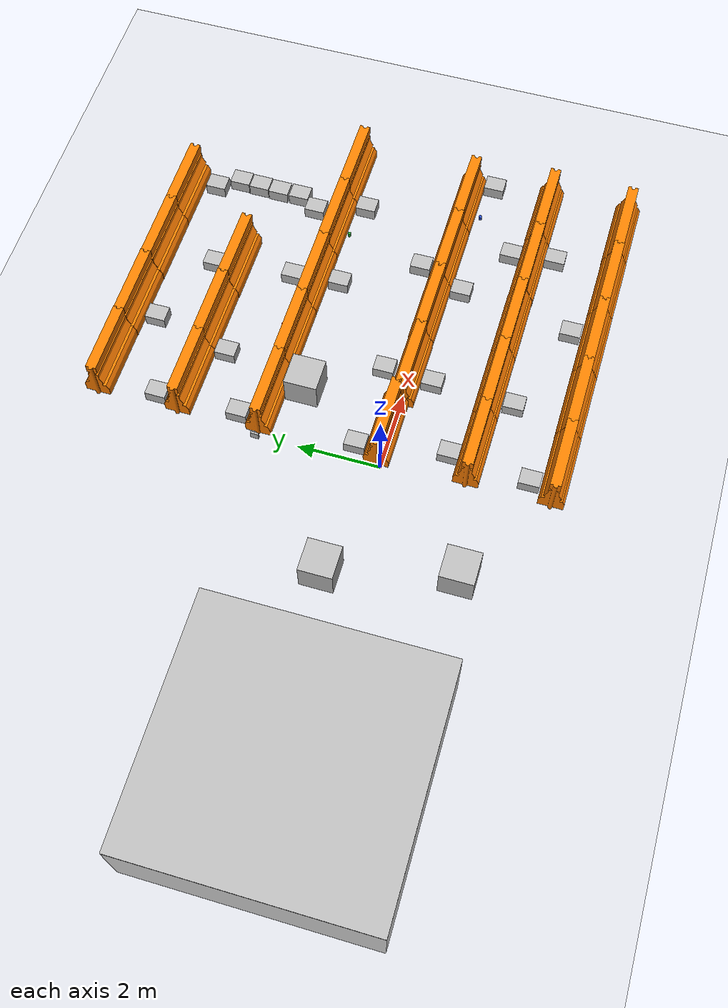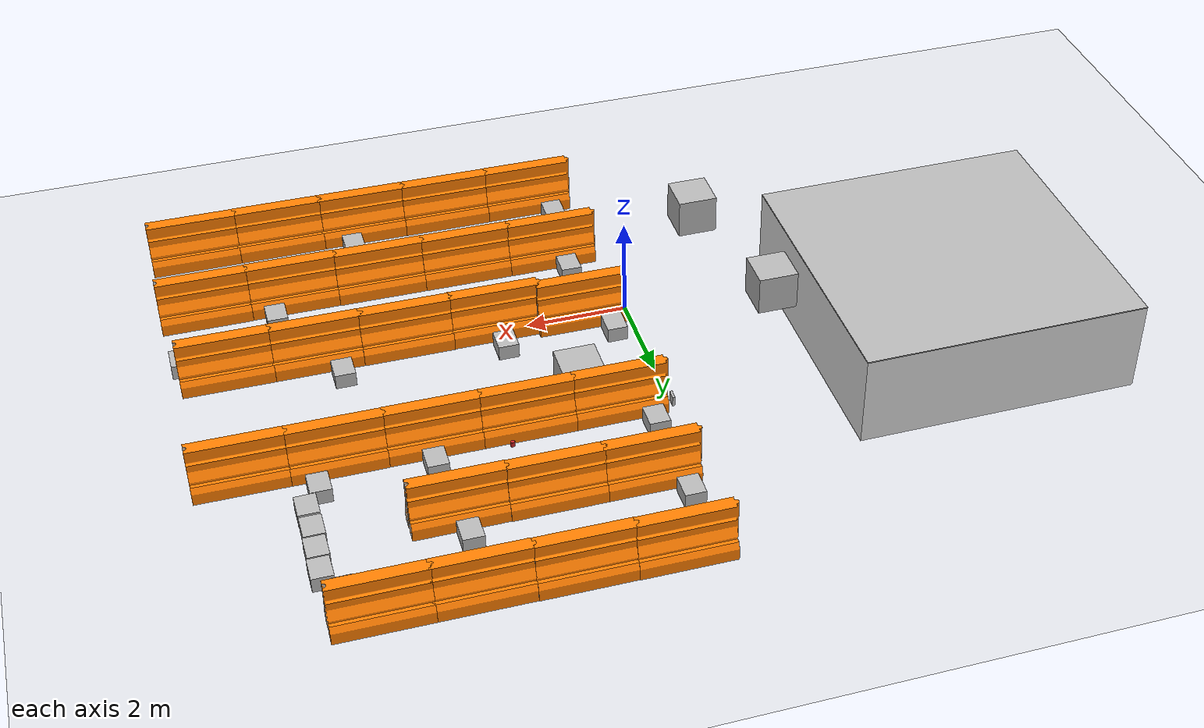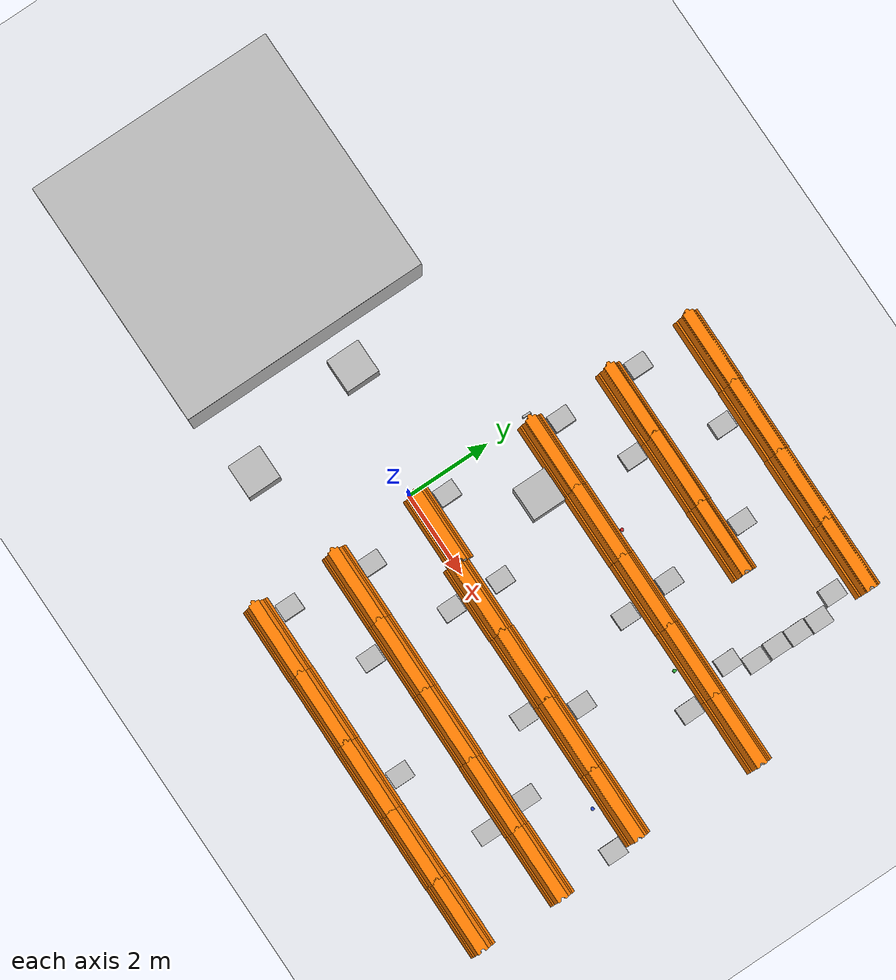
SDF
<sdf version="1.6">
 <world name="default">
  <light name="sun" type="directional">
   <pose>0 0 10 0 -0 0</pose>
   <diffuse>0.8 0.8 0.8 1</diffuse>
   <specular>0.2 0.2 0.2 1</specular>
   <attenuation>
    <range>1000</range>
    <constant>0.9</constant>
    <linear>0.01</linear>
    <quadratic>0.001</quadratic>
   </attenuation>
   <direction>-0.5 0.1 -0.9</direction>
  </light>
  <model name="ground_plane">
   <static>1</static>
   <link name="link">
    <collision name="collision">
     <geometry><plane><normal>0 0 1</normal><size>100 100</size></plane></geometry>
     <surface><friction><ode><mu>100</mu><mu2>50</mu2></ode></friction></surface>
    </collision>
    <visual name="visual">
     <cast_shadows>0</cast_shadows>
     <geometry><plane><normal>0 0 1</normal><size>100 100</size></plane></geometry>
     <material>
      <script><uri>file://media/materials/scripts/gazebo.material</uri><name>Gazebo/Grey</name></script>
     </material>
    </visual>
   </link>
  </model>
  <gravity>0 0 -9.8</gravity>
  <magnetic_field>6e-06 2.3e-05 -4.2e-05</magnetic_field>
  <atmosphere type="adiabatic"/>
  <physics name="default_physics" default="0" type="ode">
   <max_step_size>0.001</max_step_size>
   <real_time_factor>1</real_time_factor>
   <real_time_update_rate>1000</real_time_update_rate>
  </physics>
  <scene><ambient>0.4 0.4 0.4 1</ambient><background>0.7 0.7 0.7 1</background><shadows>1</shadows></scene>
  <audio><device>default</device></audio>
  <spherical_coordinates>
   <surface_model>EARTH_WGS84</surface_model>
   <latitude_deg>0</latitude_deg>
   <longitude_deg>0</longitude_deg>
   <elevation>0</elevation>
   <heading_deg>0</heading_deg>
  </spherical_coordinates>
  <model name="textured_shapes">
   <pose>-0.032494 3.03434 0.100002 1.5708 -2.5e-05 -1.60286</pose>
   <link name="box">
    <collision name="collision"><geometry><box><size>0.2 0.2 0.05</size></box></geometry></collision>
    <visual name="visual">
     <geometry><box><size>0.2 0.2 0.05</size></box></geometry>
     <material>
      <script>
       <uri>model://textured_shapes/materials/scripts</uri>
       <uri>model://textured_shapes/materials/textures</uri>
       <name>TexturedShape/Squares</name>
      </script>
     </material>
    </visual>
    <inertial>
     <inertia><ixx>1</ixx><ixy>0</ixy><ixz>0</ixz><iyy>1</iyy><iyz>0</iyz><izz>1</izz></inertia>
     <mass>1</mass>
    </inertial>
   </link>
  </model>
  <model name="BlueButton">
   <link name="link_0">
    <inertial>
     <mass>1</mass>
     <inertia><ixx>0.145833</ixx><ixy>0</ixy><ixz>0</ixz><iyy>0.145833</iyy><iyz>0</iyz><izz>0.125</izz></inertia>
    </inertial>
    <visual name="visual">
     <geometry><cylinder><radius>0.04</radius><length>0.1</length></cylinder></geometry>
     <material>
      <lighting>1</lighting>
      <script><uri>file://media/materials/scripts/gazebo.material</uri><name>Gazebo/Blue</name></script>
      <shader type="vertex"><normal_map>__default__</normal_map></shader>
      <ambient>0 0 1 1</ambient>
      <diffuse>0 0 1 1</diffuse>
      <specular>0.1 0.1 0.1 1</specular>
      <emissive>0 0 0 1</emissive>
     </material>
    </visual>
    <collision name="collision">
     <geometry><cylinder><radius>0.04</radius><length>0.1</length></cylinder></geometry>
     <surface>
      <friction>
       <ode><mu>1</mu><mu2>1</mu2><fdir1>0 0 0</fdir1><slip1>0</slip1><slip2>0</slip2></ode>
       <torsional>
        <coefficient>1</coefficient>
        <patch_radius>0</patch_radius>
        <surface_radius>0</surface_radius>
        <use_patch_radius>1</use_patch_radius>
        <ode><slip>0</slip></ode>
       </torsional>
      </friction>
      <bounce><restitution_coefficient>0</restitution_coefficient><threshold>1e+06</threshold></bounce>
      <contact>
       <collide_without_contact>0</collide_without_contact>
       <collide_without_contact_bitmask>1</collide_without_contact_bitmask>
       <collide_bitmask>1</collide_bitmask>
       <ode>
        <soft_cfm>0</soft_cfm>
        <soft_erp>0.2</soft_erp>
        <kp>1e+13</kp>
        <kd>1</kd>
        <max_vel>0.01</max_vel>
        <min_depth>0</min_depth>
       </ode>
       <bullet>
        <split_impulse>1</split_impulse>
        <split_impulse_penetration_threshold>-0.01</split_impulse_penetration_threshold>
        <soft_cfm>0</soft_cfm>
        <soft_erp>0.2</soft_erp>
        <kp>1e+13</kp>
        <kd>1</kd>
       </bullet>
      </contact>
     </surface>
    </collision>
   </link>
   <static>0</static>
   <pose>7.65973 -0.474781 0.049995 0 -0 4.2e-05</pose>
  </model>
  <model name="GreenButton">
   <link name="link_0">
    <inertial>
     <mass>1</mass>
     <inertia><ixx>0.145833</ixx><ixy>0</ixy><ixz>0</ixz><iyy>0.145833</iyy><iyz>0</iyz><izz>0.125</izz></inertia>
    </inertial>
    <visual name="visual">
     <geometry><cylinder><radius>0.04</radius><length>0.1</length></cylinder></geometry>
     <material>
      <lighting>1</lighting>
      <script><uri>file://media/materials/scripts/gazebo.material</uri><name>Gazebo/Green</name></script>
      <shader type="vertex"><normal_map>__default__</normal_map></shader>
      <ambient>0 1 0 1</ambient>
      <diffuse>0 1 0 1</diffuse>
      <specular>0.1 0.1 0.1 1</specular>
      <emissive>0 0 0 1</emissive>
     </material>
    </visual>
    <collision name="collision">
     <geometry><cylinder><radius>0.04</radius><length>0.1</length></cylinder></geometry>
     <surface>
      <friction>
       <ode><mu>1</mu><mu2>1</mu2><fdir1>0 0 0</fdir1><slip1>0</slip1><slip2>0</slip2></ode>
       <torsional>
        <coefficient>1</coefficient>
        <patch_radius>0</patch_radius>
        <surface_radius>0</surface_radius>
        <use_patch_radius>1</use_patch_radius>
        <ode><slip>0</slip></ode>
       </torsional>
      </friction>
      <bounce><restitution_coefficient>0</restitution_coefficient><threshold>1e+06</threshold></bounce>
      <contact>
       <collide_without_contact>0</collide_without_contact>
       <collide_without_contact_bitmask>1</collide_without_contact_bitmask>
       <collide_bitmask>1</collide_bitmask>
       <ode>
        <soft_cfm>0</soft_cfm>
        <soft_erp>0.2</soft_erp>
        <kp>1e+13</kp>
        <kd>1</kd>
        <max_vel>0.01</max_vel>
        <min_depth>0</min_depth>
       </ode>
       <bullet>
        <split_impulse>1</split_impulse>
        <split_impulse_penetration_threshold>-0.01</split_impulse_penetration_threshold>
        <soft_cfm>0</soft_cfm>
        <soft_erp>0.2</soft_erp>
        <kp>1e+13</kp>
        <kd>1</kd>
       </bullet>
      </contact>
     </surface>
    </collision>
   </link>
   <static>0</static>
   <pose>6.21612 2.594 0.049995 0 -0 3.9e-05</pose>
  </model>
  <model name="RedButton">
   <link name="link_1">
    <inertial>
     <mass>1</mass>
     <inertia><ixx>0.145833</ixx><ixy>0</ixy><ixz>0</ixz><iyy>0.145833</iyy><iyz>0</iyz><izz>0.125</izz></inertia>
    </inertial>
    <visual name="visual">
     <geometry><cylinder><radius>0.04</radius><length>0.1</length></cylinder></geometry>
     <material>
      <lighting>1</lighting>
      <script><uri>file://media/materials/scripts/gazebo.material</uri><name>Gazebo/Red</name></script>
      <shader type="vertex"><normal_map>__default__</normal_map></shader>
      <ambient>1 0 0 1</ambient>
      <diffuse>1 0 0 1</diffuse>
      <specular>0.1 0.1 0.1 1</specular>
      <emissive>0 0 0 1</emissive>
     </material>
    </visual>
    <collision name="collision">
     <geometry><cylinder><radius>0.04</radius><length>0.1</length></cylinder></geometry>
     <surface>
      <friction>
       <ode><mu>1</mu><mu2>1</mu2><fdir1>0 0 0</fdir1><slip1>0</slip1><slip2>0</slip2></ode>
       <torsional>
        <coefficient>1</coefficient>
        <patch_radius>0</patch_radius>
        <surface_radius>0</surface_radius>
        <use_patch_radius>1</use_patch_radius>
        <ode><slip>0</slip></ode>
       </torsional>
      </friction>
      <bounce><restitution_coefficient>0</restitution_coefficient><threshold>1e+06</threshold></bounce>
      <contact>
       <collide_without_contact>0</collide_without_contact>
       <collide_without_contact_bitmask>1</collide_without_contact_bitmask>
       <collide_bitmask>1</collide_bitmask>
       <ode>
        <soft_cfm>0</soft_cfm>
        <soft_erp>0.2</soft_erp>
        <kp>1e+13</kp>
        <kd>1</kd>
        <max_vel>0.01</max_vel>
        <min_depth>0</min_depth>
       </ode>
       <bullet>
        <split_impulse>1</split_impulse>
        <split_impulse_penetration_threshold>-0.01</split_impulse_penetration_threshold>
        <soft_cfm>0</soft_cfm>
        <soft_erp>0.2</soft_erp>
        <kp>1e+13</kp>
        <kd>1</kd>
       </bullet>
      </contact>
     </surface>
    </collision>
   </link>
   <static>0</static>
   <pose>3.1192 3.35271 0.049995 0 -0 5.8e-05</pose>
  </model>
  <model name="number2">
   <pose>1.54861 2.27585 0.4 0 -0 0</pose>
   <static>1</static>
   <link name="link">
    <visual name="visual">
     <geometry><mesh><uri>model://number1/meshes/number.dae</uri></mesh></geometry>
     <material>
      <script>
       <uri>model://number2/materials/scripts</uri>
       <uri>model://number2/materials/textures</uri>
       <name>Number/Two</name>
      </script>
     </material>
    </visual>
   </link>
  </model>
  <model name="number6">
   <pose>-2.89647 0.527536 0.4 0 -0 0</pose>
   <static>1</static>
   <link name="link">
    <visual name="visual">
     <geometry><mesh><uri>model://number1/meshes/number.dae</uri></mesh></geometry>
     <material>
      <script>
       <uri>model://number6/materials/scripts</uri>
       <uri>model://number6/materials/textures</uri>
       <name>Number/Six</name>
      </script>
     </material>
    </visual>
   </link>
  </model>
  <model name="number7">
   <pose>-2.19432 -2.44479 0.4 0 -0 0</pose>
   <static>1</static>
   <link name="link">
    <visual name="visual">
     <geometry><mesh><uri>model://number1/meshes/number.dae</uri></mesh></geometry>
     <material>
      <script>
       <uri>model://number7/materials/scripts</uri>
       <uri>model://number7/materials/textures</uri>
       <name>Number/Seven</name>
      </script>
     </material>
    </visual>
   </link>
  </model>
  <model name="box_target_green">
   <pose>-6.98276 0 -0.9999 0 0 -3.14</pose>
   <static>1</static>
   <link name="link">
    <collision name="collision"><geometry><box><size>6 6 2</size></box></geometry></collision>
    <visual name="visual">
     <geometry><mesh><uri>model://box_target_green/meshes/mesh.dae</uri></mesh></geometry>
    </visual>
   </link>
  </model>
  <model name="drc_practice_organge_jersey_barrier">
   <static>1</static>
   <link name="link">
    <visual name="visual">
     <geometry>
      <mesh><uri>model://drc_practice_orange_jersey_barrier/meshes/jersey_barrier.dae</uri></mesh>
     </geometry>
    </visual>
    <collision name="collision">
     <geometry>
      <mesh><uri>model://drc_practice_orange_jersey_barrier/meshes/jersey_barrier.dae</uri></mesh>
     </geometry>
    </collision>
   </link>
   <pose>0.94318 0.120005 0 0 0 -1.57386</pose>
  </model>
  <model name="drc_practice_organge_jersey_barrier_clone">
   <static>1</static>
   <link name="link">
    <visual name="visual">
     <geometry>
      <mesh><uri>model://drc_practice_orange_jersey_barrier/meshes/jersey_barrier.dae</uri></mesh>
     </geometry>
    </visual>
    <collision name="collision">
     <geometry>
      <mesh><uri>model://drc_practice_orange_jersey_barrier/meshes/jersey_barrier.dae</uri></mesh>
     </geometry>
    </collision>
   </link>
   <pose>2.64699 -0.005687 0 0 0 -1.57386</pose>
  </model>
  <model name="drc_practice_organge_jersey_barrier_clone_0">
   <static>1</static>
   <link name="link">
    <visual name="visual">
     <geometry>
      <mesh><uri>model://drc_practice_orange_jersey_barrier/meshes/jersey_barrier.dae</uri></mesh>
     </geometry>
    </visual>
    <collision name="collision">
     <geometry>
      <mesh><uri>model://drc_practice_orange_jersey_barrier/meshes/jersey_barrier.dae</uri></mesh>
     </geometry>
    </collision>
   </link>
   <pose>4.38633 -0.008737 0 0 0 -1.57386</pose>
  </model>
  <model name="drc_practice_organge_jersey_barrier_clone_1">
   <static>1</static>
   <link name="link">
    <visual name="visual">
     <geometry>
      <mesh><uri>model://drc_practice_orange_jersey_barrier/meshes/jersey_barrier.dae</uri></mesh>
     </geometry>
    </visual>
    <collision name="collision">
     <geometry>
      <mesh><uri>model://drc_practice_orange_jersey_barrier/meshes/jersey_barrier.dae</uri></mesh>
     </geometry>
    </collision>
   </link>
   <pose>6.10429 -0.025098 0 0 0 -1.57386</pose>
  </model>
  <model name="drc_practice_organge_jersey_barrier_clone_1_clone">
   <static>1</static>
   <link name="link">
    <visual name="visual">
     <geometry>
      <mesh><uri>model://drc_practice_orange_jersey_barrier/meshes/jersey_barrier.dae</uri></mesh>
     </geometry>
    </visual>
    <collision name="collision">
     <geometry>
      <mesh><uri>model://drc_practice_orange_jersey_barrier/meshes/jersey_barrier.dae</uri></mesh>
     </geometry>
    </collision>
   </link>
   <pose>7.84714 -0.036027 0 0 0 -1.57386</pose>
  </model>
  <model name="drc_practice_organge_jersey_barrier_clone_2">
   <static>1</static>
   <link name="link">
    <visual name="visual">
     <geometry>
      <mesh><uri>model://drc_practice_orange_jersey_barrier/meshes/jersey_barrier.dae</uri></mesh>
     </geometry>
    </visual>
    <collision name="collision">
     <geometry>
      <mesh><uri>model://drc_practice_orange_jersey_barrier/meshes/jersey_barrier.dae</uri></mesh>
     </geometry>
    </collision>
   </link>
   <pose>1 3 0 0 0 -1.57386</pose>
  </model>
  <model name="drc_practice_organge_jersey_barrier_clone_clone">
   <static>1</static>
   <link name="link">
    <visual name="visual">
     <geometry>
      <mesh><uri>model://drc_practice_orange_jersey_barrier/meshes/jersey_barrier.dae</uri></mesh>
     </geometry>
    </visual>
    <collision name="collision">
     <geometry>
      <mesh><uri>model://drc_practice_orange_jersey_barrier/meshes/jersey_barrier.dae</uri></mesh>
     </geometry>
    </collision>
   </link>
   <pose>2.75237 2.99063 0 0 0 -1.57386</pose>
  </model>
  <model name="drc_practice_organge_jersey_barrier_clone_clone_0">
   <static>1</static>
   <link name="link">
    <visual name="visual">
     <geometry>
      <mesh><uri>model://drc_practice_orange_jersey_barrier/meshes/jersey_barrier.dae</uri></mesh>
     </geometry>
    </visual>
    <collision name="collision">
     <geometry>
      <mesh><uri>model://drc_practice_orange_jersey_barrier/meshes/jersey_barrier.dae</uri></mesh>
     </geometry>
    </collision>
   </link>
   <pose>4.50023 2.97929 0 0 0 -1.57386</pose>
  </model>
  <model name="drc_practice_organge_jersey_barrier_clone_clone_1">
   <static>1</static>
   <link name="link">
    <visual name="visual">
     <geometry>
      <mesh><uri>model://drc_practice_orange_jersey_barrier/meshes/jersey_barrier.dae</uri></mesh>
     </geometry>
    </visual>
    <collision name="collision">
     <geometry>
      <mesh><uri>model://drc_practice_orange_jersey_barrier/meshes/jersey_barrier.dae</uri></mesh>
     </geometry>
    </collision>
   </link>
   <pose>6.25415 2.97251 0 0 0 -1.57386</pose>
  </model>
  <model name="drc_practice_organge_jersey_barrier_clone_clone_2">
   <static>1</static>
   <link name="link">
    <visual name="visual">
     <geometry>
      <mesh><uri>model://drc_practice_orange_jersey_barrier/meshes/jersey_barrier.dae</uri></mesh>
     </geometry>
    </visual>
    <collision name="collision">
     <geometry>
      <mesh><uri>model://drc_practice_orange_jersey_barrier/meshes/jersey_barrier.dae</uri></mesh>
     </geometry>
    </collision>
   </link>
   <pose>8.00433 2.95686 0 0 0 -1.57386</pose>
  </model>
  <model name="drc_practice_organge_jersey_barrier_clone_clone_3">
   <static>1</static>
   <link name="link">
    <visual name="visual">
     <geometry>
      <mesh><uri>model://drc_practice_orange_jersey_barrier/meshes/jersey_barrier.dae</uri></mesh>
     </geometry>
    </visual>
    <collision name="collision">
     <geometry>
      <mesh><uri>model://drc_practice_orange_jersey_barrier/meshes/jersey_barrier.dae</uri></mesh>
     </geometry>
    </collision>
   </link>
   <pose>1 5 0 0 0 -1.57386</pose>
  </model>
  <model name="drc_practice_organge_jersey_barrier_clone_clone_4">
   <static>1</static>
   <link name="link">
    <visual name="visual">
     <geometry>
      <mesh><uri>model://drc_practice_orange_jersey_barrier/meshes/jersey_barrier.dae</uri></mesh>
     </geometry>
    </visual>
    <collision name="collision">
     <geometry>
      <mesh><uri>model://drc_practice_orange_jersey_barrier/meshes/jersey_barrier.dae</uri></mesh>
     </geometry>
    </collision>
   </link>
   <pose>1 7 0 0 0 -1.57386</pose>
  </model>
  <model name="drc_practice_organge_jersey_barrier_clone_clone_5">
   <static>1</static>
   <link name="link">
    <visual name="visual">
     <geometry>
      <mesh><uri>model://drc_practice_orange_jersey_barrier/meshes/jersey_barrier.dae</uri></mesh>
     </geometry>
    </visual>
    <collision name="collision">
     <geometry>
      <mesh><uri>model://drc_practice_orange_jersey_barrier/meshes/jersey_barrier.dae</uri></mesh>
     </geometry>
    </collision>
   </link>
   <pose>2.72838 4.98864 0 0 0 -1.57386</pose>
  </model>
  <model name="drc_practice_organge_jersey_barrier_clone_clone_6">
   <static>1</static>
   <link name="link">
    <visual name="visual">
     <geometry>
      <mesh><uri>model://drc_practice_orange_jersey_barrier/meshes/jersey_barrier.dae</uri></mesh>
     </geometry>
    </visual>
    <collision name="collision">
     <geometry>
      <mesh><uri>model://drc_practice_orange_jersey_barrier/meshes/jersey_barrier.dae</uri></mesh>
     </geometry>
    </collision>
   </link>
   <pose>2.75356 6.97781 0 0 0 -1.57386</pose>
  </model>
  <model name="drc_practice_organge_jersey_barrier_clone_clone_7">
   <static>1</static>
   <link name="link">
    <visual name="visual">
     <geometry>
      <mesh><uri>model://drc_practice_orange_jersey_barrier/meshes/jersey_barrier.dae</uri></mesh>
     </geometry>
    </visual>
    <collision name="collision">
     <geometry>
      <mesh><uri>model://drc_practice_orange_jersey_barrier/meshes/jersey_barrier.dae</uri></mesh>
     </geometry>
    </collision>
   </link>
   <pose>4.48699 4.9658 0 0 0 -1.57386</pose>
  </model>
  <model name="drc_practice_organge_jersey_barrier_clone_clone_8">
   <static>1</static>
   <link name="link">
    <visual name="visual">
     <geometry>
      <mesh><uri>model://drc_practice_orange_jersey_barrier/meshes/jersey_barrier.dae</uri></mesh>
     </geometry>
    </visual>
    <collision name="collision">
     <geometry>
      <mesh><uri>model://drc_practice_orange_jersey_barrier/meshes/jersey_barrier.dae</uri></mesh>
     </geometry>
    </collision>
   </link>
   <pose>4.51216 6.95496 0 0 0 -1.57386</pose>
  </model>
  <model name="drc_practice_organge_jersey_barrier_clone_clone_9">
   <static>1</static>
   <link name="link">
    <visual name="visual">
     <geometry>
      <mesh><uri>model://drc_practice_orange_jersey_barrier/meshes/jersey_barrier.dae</uri></mesh>
     </geometry>
    </visual>
    <collision name="collision">
     <geometry>
      <mesh><uri>model://drc_practice_orange_jersey_barrier/meshes/jersey_barrier.dae</uri></mesh>
     </geometry>
    </collision>
   </link>
   <pose>6.23691 6.94236 0 0 0 -1.57386</pose>
  </model>
  <model name="drc_practice_organge_jersey_barrier_clone_3">
   <static>1</static>
   <link name="link">
    <visual name="visual">
     <geometry>
      <mesh><uri>model://drc_practice_orange_jersey_barrier/meshes/jersey_barrier.dae</uri></mesh>
     </geometry>
    </visual>
    <collision name="collision">
     <geometry>
      <mesh><uri>model://drc_practice_orange_jersey_barrier/meshes/jersey_barrier.dae</uri></mesh>
     </geometry>
    </collision>
   </link>
   <pose>1 -2 0 0 0 -1.57386</pose>
  </model>
  <model name="drc_practice_organge_jersey_barrier_clone_4">
   <static>1</static>
   <link name="link">
    <visual name="visual">
     <geometry>
      <mesh><uri>model://drc_practice_orange_jersey_barrier/meshes/jersey_barrier.dae</uri></mesh>
     </geometry>
    </visual>
    <collision name="collision">
     <geometry>
      <mesh><uri>model://drc_practice_orange_jersey_barrier/meshes/jersey_barrier.dae</uri></mesh>
     </geometry>
    </collision>
   </link>
   <pose>2.75745 -2.01392 0 0 0 -1.57386</pose>
  </model>
  <model name="drc_practice_organge_jersey_barrier_clone_5">
   <static>1</static>
   <link name="link">
    <visual name="visual">
     <geometry>
      <mesh><uri>model://drc_practice_orange_jersey_barrier/meshes/jersey_barrier.dae</uri></mesh>
     </geometry>
    </visual>
    <collision name="collision">
     <geometry>
      <mesh><uri>model://drc_practice_orange_jersey_barrier/meshes/jersey_barrier.dae</uri></mesh>
     </geometry>
    </collision>
   </link>
   <pose>4.50509 -2.02944 0 0 0 -1.57386</pose>
  </model>
  <model name="drc_practice_organge_jersey_barrier_clone_6">
   <static>1</static>
   <link name="link">
    <visual name="visual">
     <geometry>
      <mesh><uri>model://drc_practice_orange_jersey_barrier/meshes/jersey_barrier.dae</uri></mesh>
     </geometry>
    </visual>
    <collision name="collision">
     <geometry>
      <mesh><uri>model://drc_practice_orange_jersey_barrier/meshes/jersey_barrier.dae</uri></mesh>
     </geometry>
    </collision>
   </link>
   <pose>6.25384 -2.05043 0 0 0 -1.57386</pose>
  </model>
  <model name="drc_practice_organge_jersey_barrier_clone_7">
   <static>1</static>
   <link name="link">
    <visual name="visual">
     <geometry>
      <mesh><uri>model://drc_practice_orange_jersey_barrier/meshes/jersey_barrier.dae</uri></mesh>
     </geometry>
    </visual>
    <collision name="collision">
     <geometry>
      <mesh><uri>model://drc_practice_orange_jersey_barrier/meshes/jersey_barrier.dae</uri></mesh>
     </geometry>
    </collision>
   </link>
   <pose>7.99457 -2.05746 0 0 0 -1.57386</pose>
  </model>
  <model name="drc_practice_organge_jersey_barrier_clone_5_clone">
   <static>1</static>
   <link name="link">
    <visual name="visual">
     <geometry>
      <mesh><uri>model://drc_practice_orange_jersey_barrier/meshes/jersey_barrier.dae</uri></mesh>
     </geometry>
    </visual>
    <collision name="collision">
     <geometry>
      <mesh><uri>model://drc_practice_orange_jersey_barrier/meshes/jersey_barrier.dae</uri></mesh>
     </geometry>
    </collision>
   </link>
   <pose>1 -4 0 0 0 -1.57386</pose>
  </model>
  <model name="drc_practice_organge_jersey_barrier_clone_5_clone_0">
   <static>1</static>
   <link name="link">
    <visual name="visual">
     <geometry>
      <mesh><uri>model://drc_practice_orange_jersey_barrier/meshes/jersey_barrier.dae</uri></mesh>
     </geometry>
    </visual>
    <collision name="collision">
     <geometry>
      <mesh><uri>model://drc_practice_orange_jersey_barrier/meshes/jersey_barrier.dae</uri></mesh>
     </geometry>
    </collision>
   </link>
   <pose>2.75599 -4.00827 0 0 0 -1.57386</pose>
  </model>
  <model name="drc_practice_organge_jersey_barrier_clone_5_clone_1">
   <static>1</static>
   <link name="link">
    <visual name="visual">
     <geometry>
      <mesh><uri>model://drc_practice_orange_jersey_barrier/meshes/jersey_barrier.dae</uri></mesh>
     </geometry>
    </visual>
    <collision name="collision">
     <geometry>
      <mesh><uri>model://drc_practice_orange_jersey_barrier/meshes/jersey_barrier.dae</uri></mesh>
     </geometry>
    </collision>
   </link>
   <pose>4.49383 -4.02462 0 0 0 -1.57386</pose>
  </model>
  <model name="drc_practice_organge_jersey_barrier_clone_5_clone_2">
   <static>1</static>
   <link name="link">
    <visual name="visual">
     <geometry>
      <mesh><uri>model://drc_practice_orange_jersey_barrier/meshes/jersey_barrier.dae</uri></mesh>
     </geometry>
    </visual>
    <collision name="collision">
     <geometry>
      <mesh><uri>model://drc_practice_orange_jersey_barrier/meshes/jersey_barrier.dae</uri></mesh>
     </geometry>
    </collision>
   </link>
   <pose>6.2238 -4.03699 0 0 0 -1.57386</pose>
  </model>
  <model name="drc_practice_organge_jersey_barrier_clone_5_clone_3">
   <static>1</static>
   <link name="link">
    <visual name="visual">
     <geometry>
      <mesh><uri>model://drc_practice_orange_jersey_barrier/meshes/jersey_barrier.dae</uri></mesh>
     </geometry>
    </visual>
    <collision name="collision">
     <geometry>
      <mesh><uri>model://drc_practice_orange_jersey_barrier/meshes/jersey_barrier.dae</uri></mesh>
     </geometry>
    </collision>
   </link>
   <pose>7.95498 -4.04361 0 0 0 -1.57386</pose>
  </model>
  <model name="cardboard_box_clone_6_clone_1">
   <pose>8.64062 -0.61363 0.149 0 0 -1.57</pose>
   <link name="link">
    <inertial>
     <mass>2</mass>
     <inertia>
      <ixx>0.0416667</ixx>
      <ixy>0</ixy>
      <ixz>0</ixz>
      <iyy>0.0566667</iyy>
      <iyz>0</iyz>
      <izz>0.0683333</izz>
     </inertia>
    </inertial>
    <collision name="collision">
     <geometry><box><size>0.5 0.4 0.3</size></box></geometry>
     <surface>
      <friction><ode><mu>1</mu><mu2>1</mu2></ode></friction>
      <contact><ode><kp>1e+07</kp><kd>1</kd><min_depth>0.001</min_depth><max_vel>0.1</max_vel></ode></contact>
     </surface>
    </collision>
    <visual name="visual">
     <pose>0 0 -0.15 0 -0 0</pose>
     <geometry>
      <mesh><uri>model://cardboard_box/meshes/cardboard_box.dae</uri><scale>1.25932 1.00745 0.755591</scale></mesh>
     </geometry>
    </visual>
   </link>
  </model>
  <model name="cardboard_box_clone_6_clone_1_clone">
   <pose>0.414953 0.696176 0.149 0 0 -1.56712</pose>
   <link name="link">
    <inertial>
     <mass>2</mass>
     <inertia>
      <ixx>0.0416667</ixx>
      <ixy>0</ixy>
      <ixz>0</ixz>
      <iyy>0.0566667</iyy>
      <iyz>0</iyz>
      <izz>0.0683333</izz>
     </inertia>
    </inertial>
    <collision name="collision">
     <geometry><box><size>0.5 0.4 0.3</size></box></geometry>
     <surface>
      <friction><ode><mu>1</mu><mu2>1</mu2></ode></friction>
      <contact><ode><kp>1e+07</kp><kd>1</kd><min_depth>0.001</min_depth><max_vel>0.1</max_vel></ode></contact>
     </surface>
    </collision>
    <visual name="visual">
     <pose>0 0 -0.15 0 -0 0</pose>
     <geometry>
      <mesh><uri>model://cardboard_box/meshes/cardboard_box.dae</uri><scale>1.25932 1.00745 0.755591</scale></mesh>
     </geometry>
    </visual>
   </link>
  </model>
  <model name="cardboard_box_clone_6_clone_1_clone_0">
   <pose>2.56922 0.616772 0.149 0 0 -1.57</pose>
   <link name="link">
    <inertial>
     <mass>2</mass>
     <inertia>
      <ixx>0.0416667</ixx>
      <ixy>0</ixy>
      <ixz>0</ixz>
      <iyy>0.0566667</iyy>
      <iyz>0</iyz>
      <izz>0.0683333</izz>
     </inertia>
    </inertial>
    <collision name="collision">
     <geometry><box><size>0.5 0.4 0.3</size></box></geometry>
     <surface>
      <friction><ode><mu>1</mu><mu2>1</mu2></ode></friction>
      <contact><ode><kp>1e+07</kp><kd>1</kd><min_depth>0.001</min_depth><max_vel>0.1</max_vel></ode></contact>
     </surface>
    </collision>
    <visual name="visual">
     <pose>0 0 -0.15 0 -0 0</pose>
     <geometry>
      <mesh><uri>model://cardboard_box/meshes/cardboard_box.dae</uri><scale>1.25932 1.00745 0.755591</scale></mesh>
     </geometry>
    </visual>
   </link>
  </model>
  <model name="cardboard_box_clone_6_clone_1_clone_1">
   <pose>4.68905 2.3788 0.149 0 0 -1.57</pose>
   <link name="link">
    <inertial>
     <mass>2</mass>
     <inertia>
      <ixx>0.0416667</ixx>
      <ixy>0</ixy>
      <ixz>0</ixz>
      <iyy>0.0566667</iyy>
      <iyz>0</iyz>
      <izz>0.0683333</izz>
     </inertia>
    </inertial>
    <collision name="collision">
     <geometry><box><size>0.5 0.4 0.3</size></box></geometry>
     <surface>
      <friction><ode><mu>1</mu><mu2>1</mu2></ode></friction>
      <contact><ode><kp>1e+07</kp><kd>1</kd><min_depth>0.001</min_depth><max_vel>0.1</max_vel></ode></contact>
     </surface>
    </collision>
    <visual name="visual">
     <pose>0 0 -0.15 0 -0 0</pose>
     <geometry>
      <mesh><uri>model://cardboard_box/meshes/cardboard_box.dae</uri><scale>1.25932 1.00745 0.755591</scale></mesh>
     </geometry>
    </visual>
   </link>
  </model>
  <model name="cardboard_box_clone_6_clone_1_clone_2">
   <pose>5.72238 0.559862 0.149 0 0 -1.57</pose>
   <link name="link">
    <inertial>
     <mass>2</mass>
     <inertia>
      <ixx>0.0416667</ixx>
      <ixy>0</ixy>
      <ixz>0</ixz>
      <iyy>0.0566667</iyy>
      <iyz>0</iyz>
      <izz>0.0683333</izz>
     </inertia>
    </inertial>
    <collision name="collision">
     <geometry><box><size>0.5 0.4 0.3</size></box></geometry>
     <surface>
      <friction><ode><mu>1</mu><mu2>1</mu2></ode></friction>
      <contact><ode><kp>1e+07</kp><kd>1</kd><min_depth>0.001</min_depth><max_vel>0.1</max_vel></ode></contact>
     </surface>
    </collision>
    <visual name="visual">
     <pose>0 0 -0.15 0 -0 0</pose>
     <geometry>
      <mesh><uri>model://cardboard_box/meshes/cardboard_box.dae</uri><scale>1.25932 1.00745 0.755591</scale></mesh>
     </geometry>
    </visual>
   </link>
  </model>
  <model name="cardboard_box_clone_6_clone_1_clone_3">
   <pose>7.09548 2.37647 0.149 0 0 -1.57</pose>
   <link name="link">
    <inertial>
     <mass>2</mass>
     <inertia>
      <ixx>0.0416667</ixx>
      <ixy>0</ixy>
      <ixz>0</ixz>
      <iyy>0.0566667</iyy>
      <iyz>0</iyz>
      <izz>0.0683333</izz>
     </inertia>
    </inertial>
    <collision name="collision">
     <geometry><box><size>0.5 0.4 0.3</size></box></geometry>
     <surface>
      <friction><ode><mu>1</mu><mu2>1</mu2></ode></friction>
      <contact><ode><kp>1e+07</kp><kd>1</kd><min_depth>0.001</min_depth><max_vel>0.1</max_vel></ode></contact>
     </surface>
    </collision>
    <visual name="visual">
     <pose>0 0 -0.15 0 -0 0</pose>
     <geometry>
      <mesh><uri>model://cardboard_box/meshes/cardboard_box.dae</uri><scale>1.25932 1.00745 0.755591</scale></mesh>
     </geometry>
    </visual>
   </link>
  </model>
  <model name="cardboard_box_clone_6_clone_1_clone_4">
   <pose>0.754896 -1.44853 0.149 -0 -0 -1.57848</pose>
   <link name="link">
    <inertial>
     <mass>2</mass>
     <inertia>
      <ixx>0.0416667</ixx>
      <ixy>0</ixy>
      <ixz>0</ixz>
      <iyy>0.0566667</iyy>
      <iyz>0</iyz>
      <izz>0.0683333</izz>
     </inertia>
    </inertial>
    <collision name="collision">
     <geometry><box><size>0.5 0.4 0.3</size></box></geometry>
     <surface>
      <friction><ode><mu>1</mu><mu2>1</mu2></ode></friction>
      <contact><ode><kp>1e+07</kp><kd>1</kd><min_depth>0.001</min_depth><max_vel>0.1</max_vel></ode></contact>
     </surface>
    </collision>
    <visual name="visual">
     <pose>0 0 -0.15 0 -0 0</pose>
     <geometry>
      <mesh><uri>model://cardboard_box/meshes/cardboard_box.dae</uri><scale>1.25932 1.00745 0.755591</scale></mesh>
     </geometry>
    </visual>
   </link>
  </model>
  <model name="cardboard_box_clone_6_clone_1_clone_5">
   <pose>2.50363 -0.591095 0.149 0 0 -1.57</pose>
   <link name="link">
    <inertial>
     <mass>2</mass>
     <inertia>
      <ixx>0.0416667</ixx>
      <ixy>0</ixy>
      <ixz>0</ixz>
      <iyy>0.0566667</iyy>
      <iyz>0</iyz>
      <izz>0.0683333</izz>
     </inertia>
    </inertial>
    <collision name="collision">
     <geometry><box><size>0.5 0.4 0.3</size></box></geometry>
     <surface>
      <friction><ode><mu>1</mu><mu2>1</mu2></ode></friction>
      <contact><ode><kp>1e+07</kp><kd>1</kd><min_depth>0.001</min_depth><max_vel>0.1</max_vel></ode></contact>
     </surface>
    </collision>
    <visual name="visual">
     <pose>0 0 -0.15 0 -0 0</pose>
     <geometry>
      <mesh><uri>model://cardboard_box/meshes/cardboard_box.dae</uri><scale>1.25932 1.00745 0.755591</scale></mesh>
     </geometry>
    </visual>
   </link>
  </model>
  <model name="cardboard_box_clone_6_clone_1_clone_6">
   <pose>5.24939 -0.591102 0.149 0 0 -1.57</pose>
   <link name="link">
    <inertial>
     <mass>2</mass>
     <inertia>
      <ixx>0.0416667</ixx>
      <ixy>0</ixy>
      <ixz>0</ixz>
      <iyy>0.0566667</iyy>
      <iyz>0</iyz>
      <izz>0.0683333</izz>
     </inertia>
    </inertial>
    <collision name="collision">
     <geometry><box><size>0.5 0.4 0.3</size></box></geometry>
     <surface>
      <friction><ode><mu>1</mu><mu2>1</mu2></ode></friction>
      <contact><ode><kp>1e+07</kp><kd>1</kd><min_depth>0.001</min_depth><max_vel>0.1</max_vel></ode></contact>
     </surface>
    </collision>
    <visual name="visual">
     <pose>0 0 -0.15 0 -0 0</pose>
     <geometry>
      <mesh><uri>model://cardboard_box/meshes/cardboard_box.dae</uri><scale>1.25932 1.00745 0.755591</scale></mesh>
     </geometry>
    </visual>
   </link>
  </model>
  <model name="cardboard_box_clone_6_clone_1_clone_7">
   <pose>6.68328 -1.50425 0.149 0 0 -1.57829</pose>
   <link name="link">
    <inertial>
     <mass>2</mass>
     <inertia>
      <ixx>0.0416667</ixx>
      <ixy>0</ixy>
      <ixz>0</ixz>
      <iyy>0.0566667</iyy>
      <iyz>0</iyz>
      <izz>0.0683333</izz>
     </inertia>
    </inertial>
    <collision name="collision">
     <geometry><box><size>0.5 0.4 0.3</size></box></geometry>
     <surface>
      <friction><ode><mu>1</mu><mu2>1</mu2></ode></friction>
      <contact><ode><kp>1e+07</kp><kd>1</kd><min_depth>0.001</min_depth><max_vel>0.1</max_vel></ode></contact>
     </surface>
    </collision>
    <visual name="visual">
     <pose>0 0 -0.15 0 -0 0</pose>
     <geometry>
      <mesh><uri>model://cardboard_box/meshes/cardboard_box.dae</uri><scale>1.25932 1.00745 0.755591</scale></mesh>
     </geometry>
    </visual>
   </link>
  </model>
  <model name="cardboard_box_clone_6_clone_1_clone_8">
   <pose>0.561721 -3.40874 0.149 0 0 -1.57</pose>
   <link name="link">
    <inertial>
     <mass>2</mass>
     <inertia>
      <ixx>0.0416667</ixx>
      <ixy>0</ixy>
      <ixz>0</ixz>
      <iyy>0.0566667</iyy>
      <iyz>0</iyz>
      <izz>0.0683333</izz>
     </inertia>
    </inertial>
    <collision name="collision">
     <geometry><box><size>0.5 0.4 0.3</size></box></geometry>
     <surface>
      <friction><ode><mu>1</mu><mu2>1</mu2></ode></friction>
      <contact><ode><kp>1e+07</kp><kd>1</kd><min_depth>0.001</min_depth><max_vel>0.1</max_vel></ode></contact>
     </surface>
    </collision>
    <visual name="visual">
     <pose>0 0 -0.15 0 -0 0</pose>
     <geometry>
      <mesh><uri>model://cardboard_box/meshes/cardboard_box.dae</uri><scale>1.25932 1.00745 0.755591</scale></mesh>
     </geometry>
    </visual>
   </link>
  </model>
  <model name="cardboard_box_clone_6_clone_1_clone_9">
   <pose>2.42354 -2.59656 0.149 0 0 -1.57</pose>
   <link name="link">
    <inertial>
     <mass>2</mass>
     <inertia>
      <ixx>0.0416667</ixx>
      <ixy>0</ixy>
      <ixz>0</ixz>
      <iyy>0.0566667</iyy>
      <iyz>0</iyz>
      <izz>0.0683333</izz>
     </inertia>
    </inertial>
    <collision name="collision">
     <geometry><box><size>0.5 0.4 0.3</size></box></geometry>
     <surface>
      <friction><ode><mu>1</mu><mu2>1</mu2></ode></friction>
      <contact><ode><kp>1e+07</kp><kd>1</kd><min_depth>0.001</min_depth><max_vel>0.1</max_vel></ode></contact>
     </surface>
    </collision>
    <visual name="visual">
     <pose>0 0 -0.15 0 -0 0</pose>
     <geometry>
      <mesh><uri>model://cardboard_box/meshes/cardboard_box.dae</uri><scale>1.25932 1.00745 0.755591</scale></mesh>
     </geometry>
    </visual>
   </link>
  </model>
  <model name="cardboard_box_clone_6_clone_1_clone_10">
   <pose>4.79382 -3.44001 0.149 0 0 -1.57</pose>
   <link name="link">
    <inertial>
     <mass>2</mass>
     <inertia>
      <ixx>0.0416667</ixx>
      <ixy>0</ixy>
      <ixz>0</ixz>
      <iyy>0.0566667</iyy>
      <iyz>0</iyz>
      <izz>0.0683333</izz>
     </inertia>
    </inertial>
    <collision name="collision">
     <geometry><box><size>0.5 0.4 0.3</size></box></geometry>
     <surface>
      <friction><ode><mu>1</mu><mu2>1</mu2></ode></friction>
      <contact><ode><kp>1e+07</kp><kd>1</kd><min_depth>0.001</min_depth><max_vel>0.1</max_vel></ode></contact>
     </surface>
    </collision>
    <visual name="visual">
     <pose>0 0 -0.15 0 -0 0</pose>
     <geometry>
      <mesh><uri>model://cardboard_box/meshes/cardboard_box.dae</uri><scale>1.25932 1.00745 0.755591</scale></mesh>
     </geometry>
    </visual>
   </link>
  </model>
  <model name="cardboard_box_clone_6_clone_1_clone_11">
   <pose>6.82047 -2.60789 0.149 0 0 -1.57</pose>
   <link name="link">
    <inertial>
     <mass>2</mass>
     <inertia>
      <ixx>0.0416667</ixx>
      <ixy>0</ixy>
      <ixz>0</ixz>
      <iyy>0.0566667</iyy>
      <iyz>0</iyz>
      <izz>0.0683333</izz>
     </inertia>
    </inertial>
    <collision name="collision">
     <geometry><box><size>0.5 0.4 0.3</size></box></geometry>
     <surface>
      <friction><ode><mu>1</mu><mu2>1</mu2></ode></friction>
      <contact><ode><kp>1e+07</kp><kd>1</kd><min_depth>0.001</min_depth><max_vel>0.1</max_vel></ode></contact>
     </surface>
    </collision>
    <visual name="visual">
     <pose>0 0 -0.15 0 -0 0</pose>
     <geometry>
      <mesh><uri>model://cardboard_box/meshes/cardboard_box.dae</uri><scale>1.25932 1.00745 0.755591</scale></mesh>
     </geometry>
    </visual>
   </link>
  </model>
  <model name="cardboard_box_clone_6_clone_1_clone_12">
   <pose>0.450745 3.59257 0.149 0 0 -1.57</pose>
   <link name="link">
    <inertial>
     <mass>2</mass>
     <inertia>
      <ixx>0.0416667</ixx>
      <ixy>0</ixy>
      <ixz>0</ixz>
      <iyy>0.0566667</iyy>
      <iyz>0</iyz>
      <izz>0.0683333</izz>
     </inertia>
    </inertial>
    <collision name="collision">
     <geometry><box><size>0.5 0.4 0.3</size></box></geometry>
     <surface>
      <friction><ode><mu>1</mu><mu2>1</mu2></ode></friction>
      <contact><ode><kp>1e+07</kp><kd>1</kd><min_depth>0.001</min_depth><max_vel>0.1</max_vel></ode></contact>
     </surface>
    </collision>
    <visual name="visual">
     <pose>0 0 -0.15 0 -0 0</pose>
     <geometry>
      <mesh><uri>model://cardboard_box/meshes/cardboard_box.dae</uri><scale>1.25932 1.00745 0.755591</scale></mesh>
     </geometry>
    </visual>
   </link>
  </model>
  <model name="cardboard_box_clone_6_clone_1_clone_13">
   <pose>1.9681 4.39884 0.149 0 0 -1.57</pose>
   <link name="link">
    <inertial>
     <mass>2</mass>
     <inertia>
      <ixx>0.0416667</ixx>
      <ixy>0</ixy>
      <ixz>0</ixz>
      <iyy>0.0566667</iyy>
      <iyz>0</iyz>
      <izz>0.0683333</izz>
     </inertia>
    </inertial>
    <collision name="collision">
     <geometry><box><size>0.5 0.4 0.3</size></box></geometry>
     <surface>
      <friction><ode><mu>1</mu><mu2>1</mu2></ode></friction>
      <contact><ode><kp>1e+07</kp><kd>1</kd><min_depth>0.001</min_depth><max_vel>0.1</max_vel></ode></contact>
     </surface>
    </collision>
    <visual name="visual">
     <pose>0 0 -0.15 0 -0 0</pose>
     <geometry>
      <mesh><uri>model://cardboard_box/meshes/cardboard_box.dae</uri><scale>1.25932 1.00745 0.755591</scale></mesh>
     </geometry>
    </visual>
   </link>
  </model>
  <model name="cardboard_box_clone_6_clone_1_clone_14">
   <pose>4.57886 3.56005 0.149 0 0 -1.57</pose>
   <link name="link">
    <inertial>
     <mass>2</mass>
     <inertia>
      <ixx>0.0416667</ixx>
      <ixy>0</ixy>
      <ixz>0</ixz>
      <iyy>0.0566667</iyy>
      <iyz>0</iyz>
      <izz>0.0683333</izz>
     </inertia>
    </inertial>
    <collision name="collision">
     <geometry><box><size>0.5 0.4 0.3</size></box></geometry>
     <surface>
      <friction><ode><mu>1</mu><mu2>1</mu2></ode></friction>
      <contact><ode><kp>1e+07</kp><kd>1</kd><min_depth>0.001</min_depth><max_vel>0.1</max_vel></ode></contact>
     </surface>
    </collision>
    <visual name="visual">
     <pose>0 0 -0.15 0 -0 0</pose>
     <geometry>
      <mesh><uri>model://cardboard_box/meshes/cardboard_box.dae</uri><scale>1.25932 1.00745 0.755591</scale></mesh>
     </geometry>
    </visual>
   </link>
  </model>
  <model name="cardboard_box_clone_6_clone_1_clone_15">
   <pose>0.421805 5.59332 0.149 0 0 -1.57</pose>
   <link name="link">
    <inertial>
     <mass>2</mass>
     <inertia>
      <ixx>0.0416667</ixx>
      <ixy>0</ixy>
      <ixz>0</ixz>
      <iyy>0.0566667</iyy>
      <iyz>0</iyz>
      <izz>0.0683333</izz>
     </inertia>
    </inertial>
    <collision name="collision">
     <geometry><box><size>0.5 0.4 0.3</size></box></geometry>
     <surface>
      <friction><ode><mu>1</mu><mu2>1</mu2></ode></friction>
      <contact><ode><kp>1e+07</kp><kd>1</kd><min_depth>0.001</min_depth><max_vel>0.1</max_vel></ode></contact>
     </surface>
    </collision>
    <visual name="visual">
     <pose>0 0 -0.15 0 -0 0</pose>
     <geometry>
      <mesh><uri>model://cardboard_box/meshes/cardboard_box.dae</uri><scale>1.25932 1.00745 0.755591</scale></mesh>
     </geometry>
    </visual>
   </link>
  </model>
  <model name="cardboard_box_clone_6_clone_1_clone_16">
   <pose>2.47238 6.36029 0.149 0 0 -1.57</pose>
   <link name="link">
    <inertial>
     <mass>2</mass>
     <inertia>
      <ixx>0.0416667</ixx>
      <ixy>0</ixy>
      <ixz>0</ixz>
      <iyy>0.0566667</iyy>
      <iyz>0</iyz>
      <izz>0.0683333</izz>
     </inertia>
    </inertial>
    <collision name="collision">
     <geometry><box><size>0.5 0.4 0.3</size></box></geometry>
     <surface>
      <friction><ode><mu>1</mu><mu2>1</mu2></ode></friction>
      <contact><ode><kp>1e+07</kp><kd>1</kd><min_depth>0.001</min_depth><max_vel>0.1</max_vel></ode></contact>
     </surface>
    </collision>
    <visual name="visual">
     <pose>0 0 -0.15 0 -0 0</pose>
     <geometry>
      <mesh><uri>model://cardboard_box/meshes/cardboard_box.dae</uri><scale>1.25932 1.00745 0.755591</scale></mesh>
     </geometry>
    </visual>
   </link>
  </model>
  <model name="cardboard_box_clone_6_clone_1_clone_17">
   <pose>4.39849 5.54648 0.149 0 0 -1.57</pose>
   <link name="link">
    <inertial>
     <mass>2</mass>
     <inertia>
      <ixx>0.0416667</ixx>
      <ixy>0</ixy>
      <ixz>0</ixz>
      <iyy>0.0566667</iyy>
      <iyz>0</iyz>
      <izz>0.0683333</izz>
     </inertia>
    </inertial>
    <collision name="collision">
     <geometry><box><size>0.5 0.4 0.3</size></box></geometry>
     <surface>
      <friction><ode><mu>1</mu><mu2>1</mu2></ode></friction>
      <contact><ode><kp>1e+07</kp><kd>1</kd><min_depth>0.001</min_depth><max_vel>0.1</max_vel></ode></contact>
     </surface>
    </collision>
    <visual name="visual">
     <pose>0 0 -0.15 0 -0 0</pose>
     <geometry>
      <mesh><uri>model://cardboard_box/meshes/cardboard_box.dae</uri><scale>1.25932 1.00745 0.755591</scale></mesh>
     </geometry>
    </visual>
   </link>
  </model>
  <model name="cardboard_box_clone_6_clone_1_clone_18">
   <pose>6.72059 6.28019 0.149 0 0 -1.57</pose>
   <link name="link">
    <inertial>
     <mass>2</mass>
     <inertia>
      <ixx>0.0416667</ixx>
      <ixy>0</ixy>
      <ixz>0</ixz>
      <iyy>0.0566667</iyy>
      <iyz>0</iyz>
      <izz>0.0683333</izz>
     </inertia>
    </inertial>
    <collision name="collision">
     <geometry><box><size>0.5 0.4 0.3</size></box></geometry>
     <surface>
      <friction><ode><mu>1</mu><mu2>1</mu2></ode></friction>
      <contact><ode><kp>1e+07</kp><kd>1</kd><min_depth>0.001</min_depth><max_vel>0.1</max_vel></ode></contact>
     </surface>
    </collision>
    <visual name="visual">
     <pose>0 0 -0.15 0 -0 0</pose>
     <geometry>
      <mesh><uri>model://cardboard_box/meshes/cardboard_box.dae</uri><scale>1.25932 1.00745 0.755591</scale></mesh>
     </geometry>
    </visual>
   </link>
  </model>
  <model name="cardboard_box_clone_6_clone_1_clone_19">
   <pose>7.02759 5.72354 0.149 0 0 -1.57</pose>
   <link name="link">
    <inertial>
     <mass>2</mass>
     <inertia>
      <ixx>0.0416667</ixx>
      <ixy>0</ixy>
      <ixz>0</ixz>
      <iyy>0.0566667</iyy>
      <iyz>0</iyz>
      <izz>0.0683333</izz>
     </inertia>
    </inertial>
    <collision name="collision">
     <geometry><box><size>0.5 0.4 0.3</size></box></geometry>
     <surface>
      <friction><ode><mu>1</mu><mu2>1</mu2></ode></friction>
      <contact><ode><kp>1e+07</kp><kd>1</kd><min_depth>0.001</min_depth><max_vel>0.1</max_vel></ode></contact>
     </surface>
    </collision>
    <visual name="visual">
     <pose>0 0 -0.15 0 -0 0</pose>
     <geometry>
      <mesh><uri>model://cardboard_box/meshes/cardboard_box.dae</uri><scale>1.25932 1.00745 0.755591</scale></mesh>
     </geometry>
    </visual>
   </link>
  </model>
  <model name="cardboard_box_clone_6_clone_1_clone_20">
   <pose>7.00848 5.20034 0.149 0 0 -1.57</pose>
   <link name="link">
    <inertial>
     <mass>2</mass>
     <inertia>
      <ixx>0.0416667</ixx>
      <ixy>0</ixy>
      <ixz>0</ixz>
      <iyy>0.0566667</iyy>
      <iyz>0</iyz>
      <izz>0.0683333</izz>
     </inertia>
    </inertial>
    <collision name="collision">
     <geometry><box><size>0.5 0.4 0.3</size></box></geometry>
     <surface>
      <friction><ode><mu>1</mu><mu2>1</mu2></ode></friction>
      <contact><ode><kp>1e+07</kp><kd>1</kd><min_depth>0.001</min_depth><max_vel>0.1</max_vel></ode></contact>
     </surface>
    </collision>
    <visual name="visual">
     <pose>0 0 -0.15 0 -0 0</pose>
     <geometry>
      <mesh><uri>model://cardboard_box/meshes/cardboard_box.dae</uri><scale>1.25932 1.00745 0.755591</scale></mesh>
     </geometry>
    </visual>
   </link>
  </model>
  <model name="cardboard_box_clone_6_clone_1_clone_21">
   <pose>6.99003 4.67666 0.149 0 0 -1.57</pose>
   <link name="link">
    <inertial>
     <mass>2</mass>
     <inertia>
      <ixx>0.0416667</ixx>
      <ixy>0</ixy>
      <ixz>0</ixz>
      <iyy>0.0566667</iyy>
      <iyz>0</iyz>
      <izz>0.0683333</izz>
     </inertia>
    </inertial>
    <collision name="collision">
     <geometry><box><size>0.5 0.4 0.3</size></box></geometry>
     <surface>
      <friction><ode><mu>1</mu><mu2>1</mu2></ode></friction>
      <contact><ode><kp>1e+07</kp><kd>1</kd><min_depth>0.001</min_depth><max_vel>0.1</max_vel></ode></contact>
     </surface>
    </collision>
    <visual name="visual">
     <pose>0 0 -0.15 0 -0 0</pose>
     <geometry>
      <mesh><uri>model://cardboard_box/meshes/cardboard_box.dae</uri><scale>1.25932 1.00745 0.755591</scale></mesh>
     </geometry>
    </visual>
   </link>
  </model>
  <model name="cardboard_box_clone_6_clone_1_clone_22">
   <pose>6.99502 4.13258 0.149 0 0 -1.57</pose>
   <link name="link">
    <inertial>
     <mass>2</mass>
     <inertia>
      <ixx>0.0416667</ixx>
      <ixy>0</ixy>
      <ixz>0</ixz>
      <iyy>0.0566667</iyy>
      <iyz>0</iyz>
      <izz>0.0683333</izz>
     </inertia>
    </inertial>
    <collision name="collision">
     <geometry><box><size>0.5 0.4 0.3</size></box></geometry>
     <surface>
      <friction><ode><mu>1</mu><mu2>1</mu2></ode></friction>
      <contact><ode><kp>1e+07</kp><kd>1</kd><min_depth>0.001</min_depth><max_vel>0.1</max_vel></ode></contact>
     </surface>
    </collision>
    <visual name="visual">
     <pose>0 0 -0.15 0 -0 0</pose>
     <geometry>
      <mesh><uri>model://cardboard_box/meshes/cardboard_box.dae</uri><scale>1.25932 1.00745 0.755591</scale></mesh>
     </geometry>
    </visual>
   </link>
  </model>
  <model name="cardboard_box_clone_6_clone_1_clone_23">
   <pose>6.69793 3.61737 0.149 0 0 -1.57</pose>
   <link name="link">
    <inertial>
     <mass>2</mass>
     <inertia>
      <ixx>0.0416667</ixx>
      <ixy>0</ixy>
      <ixz>0</ixz>
      <iyy>0.0566667</iyy>
      <iyz>0</iyz>
      <izz>0.0683333</izz>
     </inertia>
    </inertial>
    <collision name="collision">
     <geometry><box><size>0.5 0.4 0.3</size></box></geometry>
     <surface>
      <friction><ode><mu>1</mu><mu2>1</mu2></ode></friction>
      <contact><ode><kp>1e+07</kp><kd>1</kd><min_depth>0.001</min_depth><max_vel>0.1</max_vel></ode></contact>
     </surface>
    </collision>
    <visual name="visual">
     <pose>0 0 -0.15 0 -0 0</pose>
     <geometry>
      <mesh><uri>model://cardboard_box/meshes/cardboard_box.dae</uri><scale>1.25932 1.00745 0.755591</scale></mesh>
     </geometry>
    </visual>
   </link>
  </model>
 </world>
</sdf>
